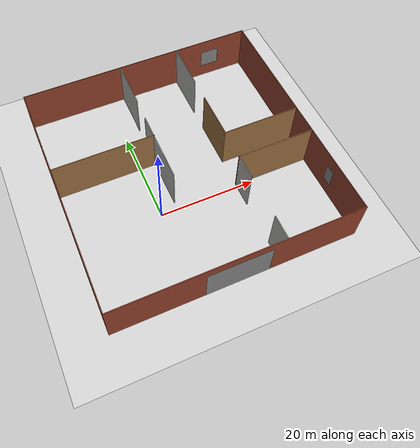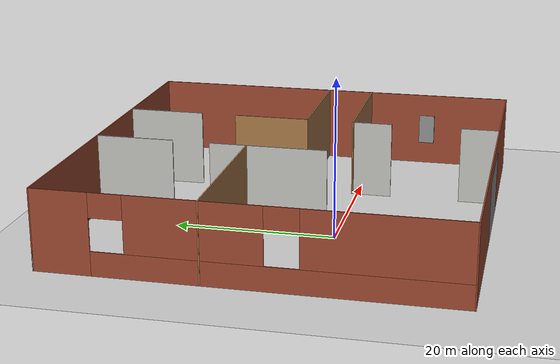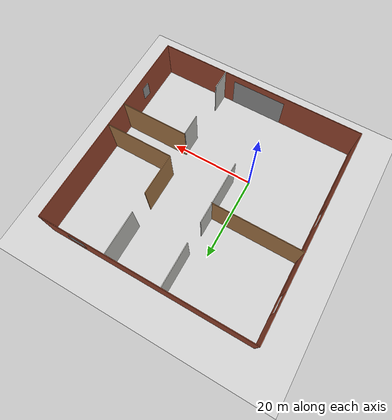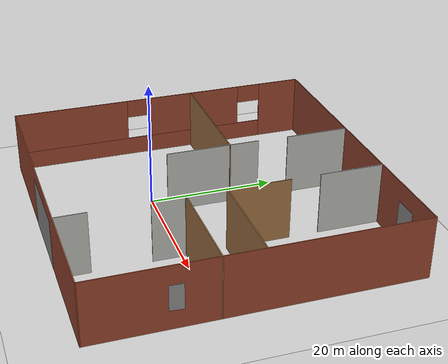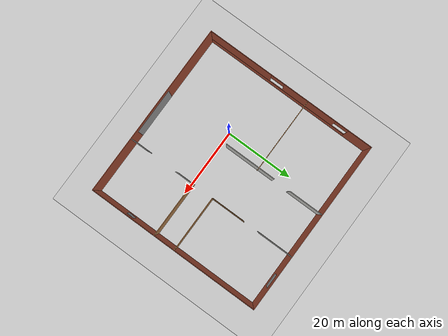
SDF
<sdf version="1.6">
 <world name="default">
  <plugin name="welcome" filename="libwelcome.so"/>
  <light name="sun" type="directional">
   <pose>0 0 10 0 -0 0</pose>
   <diffuse>0.8 0.8 0.8 1</diffuse>
   <specular>0.2 0.2 0.2 1</specular>
   <attenuation>
    <range>1000</range>
    <constant>0.9</constant>
    <linear>0.01</linear>
    <quadratic>0.001</quadratic>
   </attenuation>
   <direction>-0.5 0.1 -0.9</direction>
   <spot><inner_angle>0</inner_angle><outer_angle>0</outer_angle><falloff>0</falloff></spot>
  </light>
  <model name="ground_plane">
   <static>1</static>
   <link name="link">
    <collision name="collision">
     <geometry><plane><normal>0 0 1</normal><size>100 100</size></plane></geometry>
     <surface>
      <contact><collide_bitmask>65535</collide_bitmask></contact>
      <friction><ode><mu>100</mu><mu2>50</mu2></ode></friction>
     </surface>
    </collision>
    <visual name="visual">
     <cast_shadows>0</cast_shadows>
     <geometry><plane><normal>0 0 1</normal><size>100 100</size></plane></geometry>
     <material>
      <script><uri>file://media/materials/scripts/gazebo.material</uri><name>Gazebo/Grey</name></script>
     </material>
    </visual>
   </link>
  </model>
  <gravity>0 0 -9.8</gravity>
  <magnetic_field>6e-06 2.3e-05 -4.2e-05</magnetic_field>
  <atmosphere type="adiabatic"/>
  <physics name="default_physics" default="0" type="ode">
   <max_step_size>0.001</max_step_size>
   <real_time_factor>1</real_time_factor>
   <real_time_update_rate>1000</real_time_update_rate>
  </physics>
  <scene><ambient>0.4 0.4 0.4 1</ambient><background>0.7 0.7 0.7 1</background><shadows>1</shadows></scene>
  <spherical_coordinates>
   <surface_model>EARTH_WGS84</surface_model>
   <latitude_deg>0</latitude_deg>
   <longitude_deg>0</longitude_deg>
   <elevation>0</elevation>
   <heading_deg>0</heading_deg>
  </spherical_coordinates>
  <model name="simplefloor">
   <pose>7.59917 6.5984 0 0 -0 0</pose>
   <link name="Door_0">
    <collision name="Door_0_Collision">
     <geometry><box><size>13 0.17 8</size></box></geometry>
     <pose>0 0 4 0 -0 0</pose>
    </collision>
    <visual name="Door_0_Visual">
     <pose>0 0 4 0 -0 0</pose>
     <geometry><box><size>13 0.17 8</size></box></geometry>
     <material>
      <script><uri>file://media/materials/scripts/gazebo.material</uri><name>Gazebo/Grey</name></script>
     </material>
    </visual>
    <pose>0.015498 -25 0 0 -0 0</pose>
   </link>
   <link name="Wall_0">
    <collision name="Wall_0_Collision">
     <geometry><box><size>0.15 0.15 2.5</size></box></geometry>
     <pose>0 0 1.25 0 -0 0</pose>
    </collision>
    <visual name="Wall_0_Visual">
     <pose>0 0 1.25 0 -0 0</pose>
     <geometry><box><size>0.15 0.15 2.5</size></box></geometry>
     <material>
      <script><uri>file://media/materials/scripts/gazebo.material</uri><name>Gazebo/Grey</name></script>
      <ambient>1 1 1 1</ambient>
     </material>
     <meta><layer>0</layer></meta>
    </visual>
    <pose>-24.9845 25 0 0 -0 0</pose>
   </link>
   <link name="Wall_1">
    <collision name="Wall_1_Collision">
     <geometry><box><size>50.15 0.15 10</size></box></geometry>
     <pose>0 0 5 0 -0 0</pose>
    </collision>
    <visual name="Wall_1_Visual">
     <pose>0 0 5 0 -0 0</pose>
     <geometry><box><size>50.15 0.15 10</size></box></geometry>
     <material>
      <script><uri>file://media/materials/scripts/gazebo.material</uri><name>Gazebo/Bricks</name></script>
      <ambient>1 0.764706 0.305882 1</ambient>
     </material>
     <meta><layer>0</layer></meta>
    </visual>
    <pose>0.015498 25 0 0 -0 0</pose>
   </link>
   <link name="Wall_14">
    <collision name="Wall_14_Collision">
     <geometry><box><size>10 0.15 10</size></box></geometry>
     <pose>0 0 5 0 -0 0</pose>
    </collision>
    <visual name="Wall_14_Visual">
     <pose>0 0 5 0 -0 0</pose>
     <geometry><box><size>10 0.15 10</size></box></geometry>
     <material>
      <script><uri>file://media/materials/scripts/gazebo.material</uri><name>Gazebo/Wood</name></script>
      <ambient>0.435294 0.796078 0.67451 1</ambient>
     </material>
     <meta><layer>0</layer></meta>
    </visual>
    <pose>9.0155 5.279 0 0 0 -1.5708</pose>
   </link>
   <link name="Wall_16">
    <collision name="Wall_16_Collision">
     <geometry><box><size>10 0.15 10</size></box></geometry>
     <pose>0 0 5 0 -0 0</pose>
    </collision>
    <visual name="Wall_16_Visual">
     <pose>0 0 5 0 -0 0</pose>
     <geometry><box><size>10 0.15 10</size></box></geometry>
     <material>
      <script><uri>file://media/materials/scripts/gazebo.material</uri><name>Gazebo/CeilingTiled</name></script>
      <ambient>0.435294 0.796078 0.67451 1</ambient>
     </material>
     <meta><layer>0</layer></meta>
    </visual>
    <pose>-3.9845 19.925 0 0 -0 1.5708</pose>
   </link>
   <link name="Wall_18">
    <collision name="Wall_18_Collision">
     <geometry><box><size>10.15 0.15 10</size></box></geometry>
     <pose>0 0 5 0 -0 0</pose>
    </collision>
    <visual name="Wall_18_Visual">
     <pose>0 0 5 0 -0 0</pose>
     <geometry><box><size>10.15 0.15 10</size></box></geometry>
     <material>
      <script><uri>file://media/materials/scripts/gazebo.material</uri><name>Gazebo/CeilingTiled</name></script>
      <ambient>0.435294 0.796078 0.67451 1</ambient>
     </material>
     <meta><layer>0</layer></meta>
    </visual>
    <pose>9.0155 20 0 0 -0 1.5708</pose>
   </link>
   <link name="Wall_2">
    <collision name="Wall_2_Collision">
     <geometry><box><size>50.15 0.15 10</size></box></geometry>
     <pose>0 0 5 0 -0 0</pose>
    </collision>
    <visual name="Wall_2_Visual">
     <pose>0 0 5 0 -0 0</pose>
     <geometry><box><size>50.15 0.15 10</size></box></geometry>
     <material>
      <script><uri>file://media/materials/scripts/gazebo.material</uri><name>Gazebo/Bricks</name></script>
      <ambient>1 0.764706 0.305882 1</ambient>
     </material>
     <meta><layer>0</layer></meta>
    </visual>
    <pose>25.0155 0 0 0 0 -1.5708</pose>
   </link>
   <link name="Wall_20">
    <collision name="Wall_20_Collision">
     <geometry><box><size>15 0.15 10</size></box></geometry>
     <pose>0 0 5 0 -0 0</pose>
    </collision>
    <visual name="Wall_20_Visual">
     <pose>0 0 5 0 -0 0</pose>
     <geometry><box><size>15 0.15 10</size></box></geometry>
     <material>
      <script><uri>file://media/materials/scripts/gazebo.material</uri><name>Gazebo/CeilingTiled</name></script>
      <ambient>0.435294 0.796078 0.67451 1</ambient>
     </material>
     <meta><layer>0</layer></meta>
    </visual>
    <pose>-4.1455 2.575 0 0 0 -1.5708</pose>
   </link>
   <link name="Wall_22">
    <collision name="Wall_22_Collision">
     <geometry><box><size>21.136 0.15 10</size></box></geometry>
     <pose>0 0 5 0 -0 0</pose>
    </collision>
    <visual name="Wall_22_Visual">
     <pose>0 0 5 0 -0 0</pose>
     <geometry><box><size>21.136 0.15 10</size></box></geometry>
     <material>
      <script><uri>file://media/materials/scripts/gazebo.material</uri><name>Gazebo/Wood</name></script>
      <ambient>0.996078 0.47451 0.0196078 1</ambient>
     </material>
     <meta><layer>0</layer></meta>
    </visual>
    <pose>-14.5225 5.323 0 0 -0 0</pose>
   </link>
   <link name="Wall_24">
    <collision name="Wall_24_Collision">
     <geometry><box><size>5 0.15 10</size></box></geometry>
     <pose>0 0 5 0 -0 0</pose>
    </collision>
    <visual name="Wall_24_Visual">
     <pose>0 0 5 0 -0 0</pose>
     <geometry><box><size>5 0.15 10</size></box></geometry>
     <material>
      <script><uri>file://media/materials/scripts/gazebo.material</uri><name>Gazebo/CeilingTiled</name></script>
      <ambient>0.435294 0.796078 0.67451 1</ambient>
     </material>
     <meta><layer>0</layer></meta>
    </visual>
    <pose>9.0155 -22.575 0 0 -0 1.5708</pose>
   </link>
   <link name="Wall_26">
    <collision name="Wall_26_Collision">
     <geometry><box><size>16.15 0.15 10</size></box></geometry>
     <pose>0 0 5 0 -0 0</pose>
    </collision>
    <visual name="Wall_26_Visual">
     <pose>0 0 5 0 -0 0</pose>
     <geometry><box><size>16.15 0.15 10</size></box></geometry>
     <material>
      <script><uri>file://media/materials/scripts/gazebo.material</uri><name>Gazebo/Wood</name></script>
      <ambient>0.996078 0.47451 0.0196078 1</ambient>
     </material>
     <meta><layer>0</layer></meta>
    </visual>
    <pose>17.0155 -5.831 0 0 -0 0</pose>
   </link>
   <link name="Wall_28">
    <collision name="Wall_28_Collision">
     <geometry><box><size>5 0.15 10</size></box></geometry>
     <pose>0 0 5 0 -0 0</pose>
    </collision>
    <visual name="Wall_28_Visual">
     <pose>0 0 5 0 -0 0</pose>
     <geometry><box><size>5 0.15 10</size></box></geometry>
     <material>
      <script><uri>file://media/materials/scripts/gazebo.material</uri><name>Gazebo/CeilingTiled</name></script>
      <ambient>0.435294 0.796078 0.67451 1</ambient>
     </material>
     <meta><layer>0</layer></meta>
    </visual>
    <pose>9.0155 -8.519 0 0 -0 1.5708</pose>
   </link>
   <link name="Wall_3">
    <collision name="Wall_3_Collision">
     <geometry><box><size>50.15 0.15 10</size></box></geometry>
     <pose>0 0 5 0 -0 0</pose>
    </collision>
    <visual name="Wall_3_Visual">
     <pose>0 0 5 0 -0 0</pose>
     <geometry><box><size>50.15 0.15 10</size></box></geometry>
     <material>
      <script><uri>file://media/materials/scripts/gazebo.material</uri><name>Gazebo/Bricks</name></script>
      <ambient>1 0.764706 0.305882 1</ambient>
     </material>
     <meta><layer>0</layer></meta>
    </visual>
    <pose>0.015498 -25 0 0 -0 3.14159</pose>
   </link>
   <link name="Wall_30">
    <collision name="Wall_30_Collision">
     <geometry><box><size>16.15 0.15 10</size></box></geometry>
     <pose>0 0 5 0 -0 0</pose>
    </collision>
    <visual name="Wall_30_Visual">
     <pose>0 0 5 0 -0 0</pose>
     <geometry><box><size>16.15 0.15 10</size></box></geometry>
     <material>
      <script><uri>file://media/materials/scripts/gazebo.material</uri><name>Gazebo/Wood</name></script>
      <ambient>0.996078 0.47451 0.0196078 1</ambient>
     </material>
     <meta><layer>0</layer></meta>
    </visual>
    <pose>17.0155 0.354 0 0 -0 0</pose>
   </link>
   <link name="Wall_5">
    <collision name="Wall_5_Collision">
     <geometry><box><size>0.15 0.15 2.5</size></box></geometry>
     <pose>0 0 1.25 0 -0 0</pose>
    </collision>
    <visual name="Wall_5_Visual">
     <pose>0 0 1.25 0 -0 0</pose>
     <geometry><box><size>0.15 0.15 2.5</size></box></geometry>
     <material>
      <script><uri>file://media/materials/scripts/gazebo.material</uri><name>Gazebo/Grey</name></script>
      <ambient>1 1 1 1</ambient>
     </material>
     <meta><layer>0</layer></meta>
    </visual>
    <pose>-24.9845 25 0 0 -0 0</pose>
   </link>
   <link name="Wall_7">
    <pose>-24.9845 0.075 0 0 0 -1.5708</pose>
    <visual name="Wall_7_Visual_0">
     <pose>-21.4625 0 5 0 -0 0</pose>
     <geometry><box><size>7.075 0.15 10</size></box></geometry>
     <material>
      <script><uri>file://media/materials/scripts/gazebo.material</uri><name>Gazebo/Bricks</name></script>
      <ambient>1 0.764706 0.305882 1</ambient>
     </material>
     <meta><layer>0</layer></meta>
    </visual>
    <collision name="Wall_7_Collision_0">
     <geometry><box><size>7.075 0.15 10</size></box></geometry>
     <pose>-21.4625 0 5 0 -0 0</pose>
    </collision>
    <visual name="Wall_7_Visual_1">
     <pose>3.5375 0 1.5 0 -0 0</pose>
     <geometry><box><size>42.925 0.15 3</size></box></geometry>
     <material>
      <script><uri>file://media/materials/scripts/gazebo.material</uri><name>Gazebo/Bricks</name></script>
      <ambient>1 0.764706 0.305882 1</ambient>
     </material>
     <meta><layer>0</layer></meta>
    </visual>
    <collision name="Wall_7_Collision_1">
     <geometry><box><size>42.925 0.15 3</size></box></geometry>
     <pose>3.5375 0 1.5 0 -0 0</pose>
    </collision>
    <visual name="Wall_7_Visual_2">
     <pose>-5.925 0 6.5 0 -0 0</pose>
     <geometry><box><size>16 0.15 7</size></box></geometry>
     <material>
      <script><uri>file://media/materials/scripts/gazebo.material</uri><name>Gazebo/Bricks</name></script>
      <ambient>1 0.764706 0.305882 1</ambient>
     </material>
     <meta><layer>0</layer></meta>
    </visual>
    <collision name="Wall_7_Collision_2">
     <geometry><box><size>16 0.15 7</size></box></geometry>
     <pose>-5.925 0 6.5 0 -0 0</pose>
    </collision>
    <visual name="Wall_7_Visual_3">
     <pose>15.5375 0 6.5 0 -0 0</pose>
     <geometry><box><size>18.925 0.15 7</size></box></geometry>
     <material>
      <script><uri>file://media/materials/scripts/gazebo.material</uri><name>Gazebo/Bricks</name></script>
      <ambient>1 0.764706 0.305882 1</ambient>
     </material>
     <meta><layer>0</layer></meta>
    </visual>
    <collision name="Wall_7_Collision_3">
     <geometry><box><size>18.925 0.15 7</size></box></geometry>
     <pose>15.5375 0 6.5 0 -0 0</pose>
    </collision>
    <visual name="Wall_7_Visual_4">
     <pose>-15.925 0 8.5 0 -0 0</pose>
     <geometry><box><size>4 0.15 3</size></box></geometry>
     <material>
      <script><uri>file://media/materials/scripts/gazebo.material</uri><name>Gazebo/Bricks</name></script>
      <ambient>1 0.764706 0.305882 1</ambient>
     </material>
     <meta><layer>0</layer></meta>
    </visual>
    <collision name="Wall_7_Collision_4">
     <geometry><box><size>4 0.15 3</size></box></geometry>
     <pose>-15.925 0 8.5 0 -0 0</pose>
    </collision>
    <visual name="Wall_7_Visual_5">
     <pose>4.075 0 8.5 0 -0 0</pose>
     <geometry><box><size>4 0.15 3</size></box></geometry>
     <material>
      <script><uri>file://media/materials/scripts/gazebo.material</uri><name>Gazebo/Bricks</name></script>
      <ambient>1 0.764706 0.305882 1</ambient>
     </material>
     <meta><layer>0</layer></meta>
    </visual>
    <collision name="Wall_7_Collision_5">
     <geometry><box><size>4 0.15 3</size></box></geometry>
     <pose>4.075 0 8.5 0 -0 0</pose>
    </collision>
   </link>
   <link name="Window_2">
    <collision name="Window_2_Collision">
     <geometry><box><size>4 0.17 4</size></box></geometry>
     <pose>0 0 2 0 -0 0</pose>
    </collision>
    <visual name="Window_2_Visual">
     <pose>0 0 2 0 -0 0</pose>
     <geometry><box><size>4 0.17 4</size></box></geometry>
     <material>
      <script><uri>file://media/materials/scripts/gazebo.material</uri><name>Gazebo/Grey</name></script>
     </material>
    </visual>
    <pose>25.0155 -13 3 0 0 -1.63783</pose>
   </link>
   <link name="Window_4">
    <collision name="Window_4_Collision">
     <geometry><box><size>4 0.17 4</size></box></geometry>
     <pose>0 0 2 0 -0 0</pose>
    </collision>
    <visual name="Window_4_Visual">
     <pose>0 0 2 0 -0 0</pose>
     <geometry><box><size>4 0.17 4</size></box></geometry>
     <material>
      <script><uri>file://media/materials/scripts/gazebo.material</uri><name>Gazebo/Grey</name></script>
     </material>
    </visual>
    <pose>17.0155 25 3 0 -0 0</pose>
   </link>
   <static>1</static>
  </model>
  <model name="my_ball">
   <link name="link_0">
    <inertial>
     <mass>1</mass>
     <inertia><ixx>0.1</ixx><ixy>0</ixy><ixz>0</ixz><iyy>0.1</iyy><iyz>0</iyz><izz>0.1</izz></inertia>
    </inertial>
    <visual name="visual">
     <geometry><sphere><radius>0.1</radius></sphere></geometry>
     <material>
      <lighting>1</lighting>
      <script><uri>file://media/materials/scripts/gazebo.material</uri><name>Gazebo/Grey</name></script>
      <shader type="pixel"><normal_map>__default__</normal_map></shader>
      <ambient>1 1 1 1</ambient>
      <diffuse>1 1 1 1</diffuse>
      <specular>1 1 1 1</specular>
      <emissive>1 1 1 1</emissive>
     </material>
    </visual>
    <collision name="collision">
     <geometry><sphere><radius>0.1</radius></sphere></geometry>
     <surface>
      <friction>
       <ode><mu>1</mu><mu2>1</mu2><fdir1>0 0 0</fdir1><slip1>0</slip1><slip2>0</slip2></ode>
       <torsional>
        <coefficient>1</coefficient>
        <patch_radius>0</patch_radius>
        <surface_radius>0</surface_radius>
        <use_patch_radius>1</use_patch_radius>
        <ode><slip>0</slip></ode>
       </torsional>
      </friction>
      <bounce><restitution_coefficient>0</restitution_coefficient><threshold>1e+06</threshold></bounce>
      <contact>
       <collide_without_contact>0</collide_without_contact>
       <collide_without_contact_bitmask>1</collide_without_contact_bitmask>
       <collide_bitmask>1</collide_bitmask>
       <ode>
        <soft_cfm>0</soft_cfm>
        <soft_erp>0.2</soft_erp>
        <kp>1e+13</kp>
        <kd>1</kd>
        <max_vel>0.01</max_vel>
        <min_depth>0</min_depth>
       </ode>
       <bullet>
        <split_impulse>1</split_impulse>
        <split_impulse_penetration_threshold>-0.01</split_impulse_penetration_threshold>
        <soft_cfm>0</soft_cfm>
        <soft_erp>0.2</soft_erp>
        <kp>1e+13</kp>
        <kd>1</kd>
       </bullet>
      </contact>
     </surface>
    </collision>
   </link>
   <static>0</static>
   <pose>6.96985 0.017475 0.1 0 -0 0</pose>
  </model>
 </world>
</sdf>
